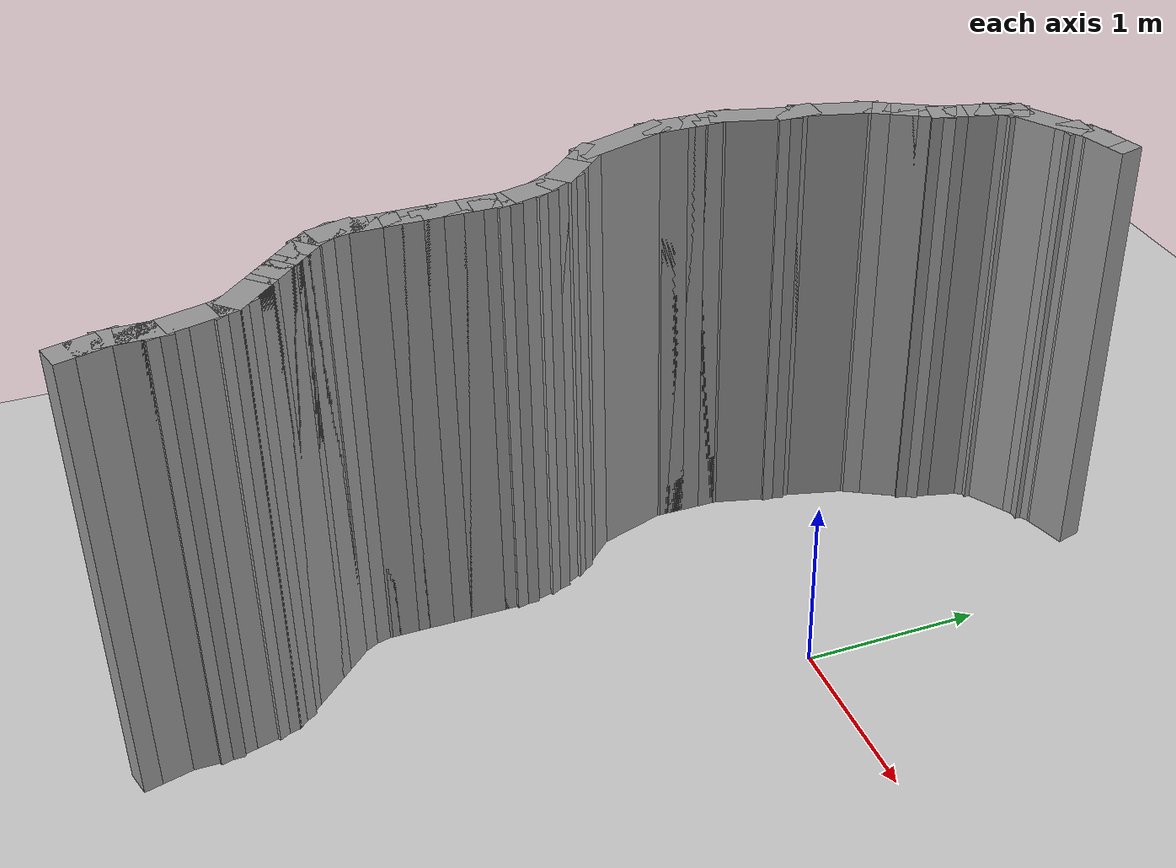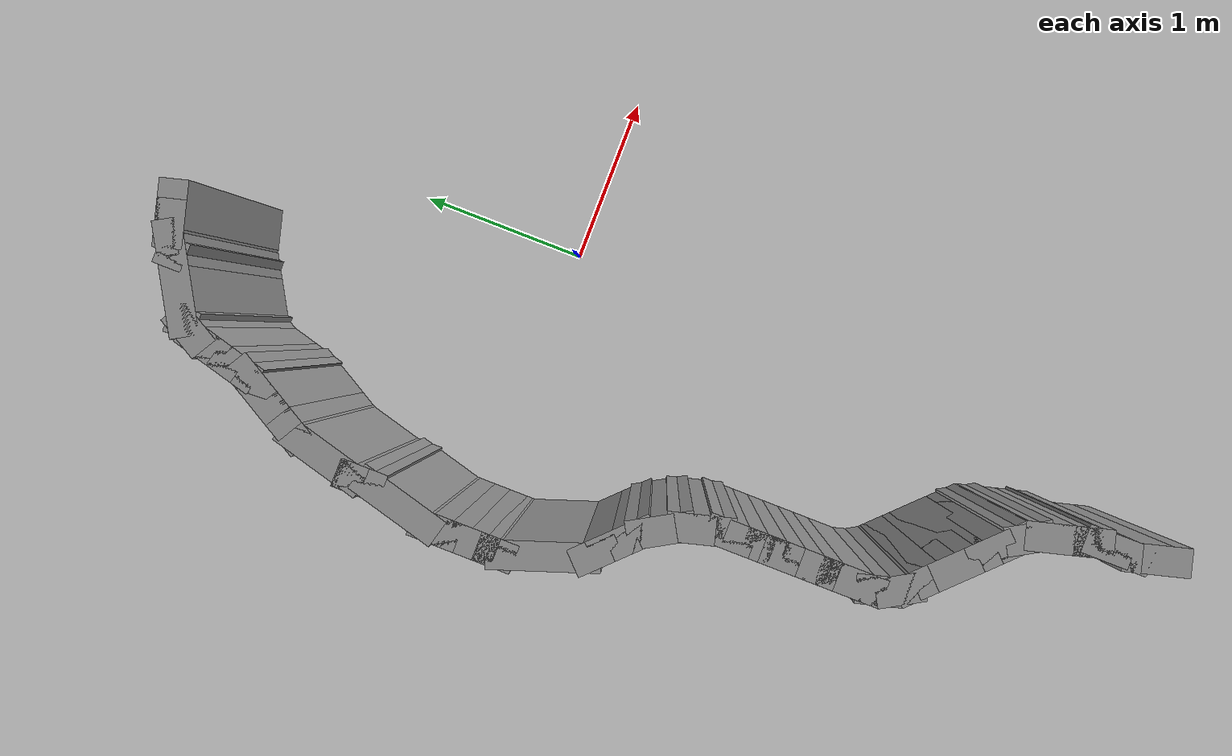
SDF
<sdf version="1.7">
 <world name="default">
  <model name="ground_plane">
   <static>1</static>
   <link name="link">
    <collision name="collision">
     <geometry><plane><normal>0 0 1</normal><size>100 100</size></plane></geometry>
     <surface>
      <contact><collide_bitmask>65535</collide_bitmask></contact>
      <friction><ode><mu>100</mu><mu2>50</mu2></ode></friction>
     </surface>
    </collision>
    <visual name="visual">
     <cast_shadows>0</cast_shadows>
     <geometry><plane><normal>0 0 1</normal><size>100 100</size></plane></geometry>
     <material>
      <script><uri>file://media/materials/scripts/gazebo.material</uri><name>Gazebo/Grey</name></script>
     </material>
    </visual>
   </link>
  </model>
  <model name="pool11">
   <pose>1.69068 -1.09805 0 0 -0 0</pose>
   <link name="Wall_167">
    <collision name="Wall_167_Collision">
     <geometry><box><size>0.25 0.15 2.5</size></box></geometry>
     <pose>0 0 1.25 0 -0 0</pose>
    </collision>
    <visual name="Wall_167_Visual">
     <pose>0 0 1.25 0 -0 0</pose>
     <geometry><box><size>0.25 0.15 2.5</size></box></geometry>
     <material>
      <script><uri>file://media/materials/scripts/gazebo.material</uri><name>Gazebo/Grey</name></script>
      <ambient>1 1 1 1</ambient>
     </material>
     <meta><layer>0</layer></meta>
    </visual>
    <pose>-2.228 2.96738 0 0 -0 -2.87979</pose>
   </link>
   <link name="Wall_168">
    <collision name="Wall_168_Collision">
     <geometry><box><size>0.25 0.15 2.5</size></box></geometry>
     <pose>0 0 1.25 0 -0 0</pose>
    </collision>
    <visual name="Wall_168_Visual">
     <pose>0 0 1.25 0 -0 0</pose>
     <geometry><box><size>0.25 0.15 2.5</size></box></geometry>
     <material>
      <script><uri>file://media/materials/scripts/gazebo.material</uri><name>Gazebo/Grey</name></script>
      <ambient>1 1 1 1</ambient>
     </material>
     <meta><layer>0</layer></meta>
    </visual>
    <pose>-2.3246 2.9415 0 0 -0 -2.87979</pose>
   </link>
   <link name="Wall_169">
    <collision name="Wall_169_Collision">
     <geometry><box><size>0.25 0.15 2.5</size></box></geometry>
     <pose>0 0 1.25 0 -0 0</pose>
    </collision>
    <visual name="Wall_169_Visual">
     <pose>0 0 1.25 0 -0 0</pose>
     <geometry><box><size>0.25 0.15 2.5</size></box></geometry>
     <material>
      <script><uri>file://media/materials/scripts/gazebo.material</uri><name>Gazebo/Grey</name></script>
      <ambient>1 1 1 1</ambient>
     </material>
     <meta><layer>0</layer></meta>
    </visual>
    <pose>-2.41619 2.90356 0 0 -0 -2.61799</pose>
   </link>
   <link name="Wall_170">
    <collision name="Wall_170_Collision">
     <geometry><box><size>0.15 0.15 2.5</size></box></geometry>
     <pose>0 0 1.25 0 -0 0</pose>
    </collision>
    <visual name="Wall_170_Visual">
     <pose>0 0 1.25 0 -0 0</pose>
     <geometry><box><size>0.15 0.15 2.5</size></box></geometry>
     <material>
      <script><uri>file://media/materials/scripts/gazebo.material</uri><name>Gazebo/Grey</name></script>
      <ambient>1 1 1 1</ambient>
     </material>
     <meta><layer>0</layer></meta>
    </visual>
    <pose>-2.45949 2.87856 0 0 -0 0</pose>
   </link>
   <link name="Wall_171">
    <collision name="Wall_171_Collision">
     <geometry><box><size>0.5 0.15 2.5</size></box></geometry>
     <pose>0 0 1.25 0 -0 0</pose>
    </collision>
    <visual name="Wall_171_Visual">
     <pose>0 0 1.25 0 -0 0</pose>
     <geometry><box><size>0.5 0.15 2.5</size></box></geometry>
     <material>
      <script><uri>file://media/materials/scripts/gazebo.material</uri><name>Gazebo/Grey</name></script>
      <ambient>1 1 1 1</ambient>
     </material>
     <meta><layer>0</layer></meta>
    </visual>
    <pose>-2.61105 2.79106 0 0 -0 -2.61799</pose>
   </link>
   <link name="Wall_172">
    <collision name="Wall_172_Collision">
     <geometry><box><size>0.15 0.15 2.5</size></box></geometry>
     <pose>0 0 1.25 0 -0 0</pose>
    </collision>
    <visual name="Wall_172_Visual">
     <pose>0 0 1.25 0 -0 0</pose>
     <geometry><box><size>0.15 0.15 2.5</size></box></geometry>
     <material>
      <script><uri>file://media/materials/scripts/gazebo.material</uri><name>Gazebo/Grey</name></script>
      <ambient>1 1 1 1</ambient>
     </material>
     <meta><layer>0</layer></meta>
    </visual>
    <pose>-2.7626 2.70356 0 0 -0 0</pose>
   </link>
   <link name="Wall_173">
    <collision name="Wall_173_Collision">
     <geometry><box><size>0.15 0.15 2.5</size></box></geometry>
     <pose>0 0 1.25 0 -0 0</pose>
    </collision>
    <visual name="Wall_173_Visual">
     <pose>0 0 1.25 0 -0 0</pose>
     <geometry><box><size>0.15 0.15 2.5</size></box></geometry>
     <material>
      <script><uri>file://media/materials/scripts/gazebo.material</uri><name>Gazebo/Grey</name></script>
      <ambient>1 1 1 1</ambient>
     </material>
     <meta><layer>0</layer></meta>
    </visual>
    <pose>-2.7626 2.70356 0 0 -0 0</pose>
   </link>
   <link name="Wall_174">
    <collision name="Wall_174_Collision">
     <geometry><box><size>0.25 0.15 2.5</size></box></geometry>
     <pose>0 0 1.25 0 -0 0</pose>
    </collision>
    <visual name="Wall_174_Visual">
     <pose>0 0 1.25 0 -0 0</pose>
     <geometry><box><size>0.25 0.15 2.5</size></box></geometry>
     <material>
      <script><uri>file://media/materials/scripts/gazebo.material</uri><name>Gazebo/Grey</name></script>
      <ambient>1 1 1 1</ambient>
     </material>
     <meta><layer>0</layer></meta>
    </visual>
    <pose>-2.7876 2.66026 0 0 -0 -2.0944</pose>
   </link>
   <link name="Wall_175">
    <collision name="Wall_175_Collision">
     <geometry><box><size>0.25 0.15 2.5</size></box></geometry>
     <pose>0 0 1.25 0 -0 0</pose>
    </collision>
    <visual name="Wall_175_Visual">
     <pose>0 0 1.25 0 -0 0</pose>
     <geometry><box><size>0.25 0.15 2.5</size></box></geometry>
     <material>
      <script><uri>file://media/materials/scripts/gazebo.material</uri><name>Gazebo/Grey</name></script>
      <ambient>1 1 1 1</ambient>
     </material>
     <meta><layer>0</layer></meta>
    </visual>
    <pose>-2.82554 2.56866 0 0 -0 -1.8326</pose>
   </link>
   <link name="Wall_176">
    <collision name="Wall_176_Collision">
     <geometry><box><size>0.25 0.15 2.5</size></box></geometry>
     <pose>0 0 1.25 0 -0 0</pose>
    </collision>
    <visual name="Wall_176_Visual">
     <pose>0 0 1.25 0 -0 0</pose>
     <geometry><box><size>0.25 0.15 2.5</size></box></geometry>
     <material>
      <script><uri>file://media/materials/scripts/gazebo.material</uri><name>Gazebo/Grey</name></script>
      <ambient>1 1 1 1</ambient>
     </material>
     <meta><layer>0</layer></meta>
    </visual>
    <pose>-2.85143 2.47207 0 0 -0 -1.8326</pose>
   </link>
   <link name="Wall_177">
    <collision name="Wall_177_Collision">
     <geometry><box><size>0.25 0.15 2.5</size></box></geometry>
     <pose>0 0 1.25 0 -0 0</pose>
    </collision>
    <visual name="Wall_177_Visual">
     <pose>0 0 1.25 0 -0 0</pose>
     <geometry><box><size>0.25 0.15 2.5</size></box></geometry>
     <material>
      <script><uri>file://media/materials/scripts/gazebo.material</uri><name>Gazebo/Grey</name></script>
      <ambient>1 1 1 1</ambient>
     </material>
     <meta><layer>0</layer></meta>
    </visual>
    <pose>-2.87731 2.37547 0 0 -0 -1.8326</pose>
   </link>
   <link name="Wall_178">
    <collision name="Wall_178_Collision">
     <geometry><box><size>0.25 0.15 2.5</size></box></geometry>
     <pose>0 0 1.25 0 -0 0</pose>
    </collision>
    <visual name="Wall_178_Visual">
     <pose>0 0 1.25 0 -0 0</pose>
     <geometry><box><size>0.25 0.15 2.5</size></box></geometry>
     <material>
      <script><uri>file://media/materials/scripts/gazebo.material</uri><name>Gazebo/Grey</name></script>
      <ambient>1 1 1 1</ambient>
     </material>
     <meta><layer>0</layer></meta>
    </visual>
    <pose>-2.91525 2.28388 0 0 -0 -2.0944</pose>
   </link>
   <link name="Wall_179">
    <collision name="Wall_179_Collision">
     <geometry><box><size>0.25 0.15 2.5</size></box></geometry>
     <pose>0 0 1.25 0 -0 0</pose>
    </collision>
    <visual name="Wall_179_Visual">
     <pose>0 0 1.25 0 -0 0</pose>
     <geometry><box><size>0.25 0.15 2.5</size></box></geometry>
     <material>
      <script><uri>file://media/materials/scripts/gazebo.material</uri><name>Gazebo/Grey</name></script>
      <ambient>1 1 1 1</ambient>
     </material>
     <meta><layer>0</layer></meta>
    </visual>
    <pose>-2.96525 2.19727 0 0 -0 -2.0944</pose>
   </link>
   <link name="Wall_180">
    <collision name="Wall_180_Collision">
     <geometry><box><size>0.25 0.15 2.5</size></box></geometry>
     <pose>0 0 1.25 0 -0 0</pose>
    </collision>
    <visual name="Wall_180_Visual">
     <pose>0 0 1.25 0 -0 0</pose>
     <geometry><box><size>0.25 0.15 2.5</size></box></geometry>
     <material>
      <script><uri>file://media/materials/scripts/gazebo.material</uri><name>Gazebo/Grey</name></script>
      <ambient>1 1 1 1</ambient>
     </material>
     <meta><layer>0</layer></meta>
    </visual>
    <pose>-3.01525 2.11067 0 0 -0 -2.0944</pose>
   </link>
   <link name="Wall_181">
    <collision name="Wall_181_Collision">
     <geometry><box><size>0.25 0.15 2.5</size></box></geometry>
     <pose>0 0 1.25 0 -0 0</pose>
    </collision>
    <visual name="Wall_181_Visual">
     <pose>0 0 1.25 0 -0 0</pose>
     <geometry><box><size>0.25 0.15 2.5</size></box></geometry>
     <material>
      <script><uri>file://media/materials/scripts/gazebo.material</uri><name>Gazebo/Grey</name></script>
      <ambient>1 1 1 1</ambient>
     </material>
     <meta><layer>0</layer></meta>
    </visual>
    <pose>-3.06525 2.02407 0 0 -0 -2.0944</pose>
   </link>
   <link name="Wall_182">
    <collision name="Wall_182_Collision">
     <geometry><box><size>0.5 0.15 2.5</size></box></geometry>
     <pose>0 0 1.25 0 -0 0</pose>
    </collision>
    <visual name="Wall_182_Visual">
     <pose>0 0 1.25 0 -0 0</pose>
     <geometry><box><size>0.5 0.15 2.5</size></box></geometry>
     <material>
      <script><uri>file://media/materials/scripts/gazebo.material</uri><name>Gazebo/Grey</name></script>
      <ambient>1 1 1 1</ambient>
     </material>
     <meta><layer>0</layer></meta>
    </visual>
    <pose>-3.13554 1.81173 0 0 -0 -1.8326</pose>
   </link>
   <link name="Wall_183">
    <collision name="Wall_183_Collision">
     <geometry><box><size>0.15 0.15 2.5</size></box></geometry>
     <pose>0 0 1.25 0 -0 0</pose>
    </collision>
    <visual name="Wall_183_Visual">
     <pose>0 0 1.25 0 -0 0</pose>
     <geometry><box><size>0.15 0.15 2.5</size></box></geometry>
     <material>
      <script><uri>file://media/materials/scripts/gazebo.material</uri><name>Gazebo/Grey</name></script>
      <ambient>1 1 1 1</ambient>
     </material>
     <meta><layer>0</layer></meta>
    </visual>
    <pose>-3.18084 1.64269 0 0 -0 0</pose>
   </link>
   <link name="Wall_184">
    <collision name="Wall_184_Collision">
     <geometry><box><size>0.25 0.15 2.5</size></box></geometry>
     <pose>0 0 1.25 0 -0 0</pose>
    </collision>
    <visual name="Wall_184_Visual">
     <pose>0 0 1.25 0 -0 0</pose>
     <geometry><box><size>0.25 0.15 2.5</size></box></geometry>
     <material>
      <script><uri>file://media/materials/scripts/gazebo.material</uri><name>Gazebo/Grey</name></script>
      <ambient>1 1 1 1</ambient>
     </material>
     <meta><layer>0</layer></meta>
    </visual>
    <pose>-3.18084 1.59269 0 0 -0 -1.5708</pose>
   </link>
   <link name="Wall_185">
    <collision name="Wall_185_Collision">
     <geometry><box><size>0.5 0.15 2.5</size></box></geometry>
     <pose>0 0 1.25 0 -0 0</pose>
    </collision>
    <visual name="Wall_185_Visual">
     <pose>0 0 1.25 0 -0 0</pose>
     <geometry><box><size>0.5 0.15 2.5</size></box></geometry>
     <material>
      <script><uri>file://media/materials/scripts/gazebo.material</uri><name>Gazebo/Grey</name></script>
      <ambient>1 1 1 1</ambient>
     </material>
     <meta><layer>0</layer></meta>
    </visual>
    <pose>-3.22613 1.37366 0 0 -0 -1.8326</pose>
   </link>
   <link name="Wall_186">
    <collision name="Wall_186_Collision">
     <geometry><box><size>0.25 0.15 2.5</size></box></geometry>
     <pose>0 0 1.25 0 -0 0</pose>
    </collision>
    <visual name="Wall_186_Visual">
     <pose>0 0 1.25 0 -0 0</pose>
     <geometry><box><size>0.25 0.15 2.5</size></box></geometry>
     <material>
      <script><uri>file://media/materials/scripts/gazebo.material</uri><name>Gazebo/Grey</name></script>
      <ambient>1 1 1 1</ambient>
     </material>
     <meta><layer>0</layer></meta>
    </visual>
    <pose>-3.27142 1.15462 0 0 -0 -1.5708</pose>
   </link>
   <link name="Wall_187">
    <collision name="Wall_187_Collision">
     <geometry><box><size>0.25 0.15 2.5</size></box></geometry>
     <pose>0 0 1.25 0 -0 0</pose>
    </collision>
    <visual name="Wall_187_Visual">
     <pose>0 0 1.25 0 -0 0</pose>
     <geometry><box><size>0.25 0.15 2.5</size></box></geometry>
     <material>
      <script><uri>file://media/materials/scripts/gazebo.material</uri><name>Gazebo/Grey</name></script>
      <ambient>1 1 1 1</ambient>
     </material>
     <meta><layer>0</layer></meta>
    </visual>
    <pose>-3.27142 1.05462 0 0 -0 -1.5708</pose>
   </link>
   <link name="Wall_188">
    <collision name="Wall_188_Collision">
     <geometry><box><size>0.25 0.15 2.5</size></box></geometry>
     <pose>0 0 1.25 0 -0 0</pose>
    </collision>
    <visual name="Wall_188_Visual">
     <pose>0 0 1.25 0 -0 0</pose>
     <geometry><box><size>0.25 0.15 2.5</size></box></geometry>
     <material>
      <script><uri>file://media/materials/scripts/gazebo.material</uri><name>Gazebo/Grey</name></script>
      <ambient>1 1 1 1</ambient>
     </material>
     <meta><layer>0</layer></meta>
    </visual>
    <pose>-3.27142 0.95462 0 0 -0 -1.5708</pose>
   </link>
   <link name="Wall_189">
    <collision name="Wall_189_Collision">
     <geometry><box><size>0.25 0.15 2.5</size></box></geometry>
     <pose>0 0 1.25 0 -0 0</pose>
    </collision>
    <visual name="Wall_189_Visual">
     <pose>0 0 1.25 0 -0 0</pose>
     <geometry><box><size>0.25 0.15 2.5</size></box></geometry>
     <material>
      <script><uri>file://media/materials/scripts/gazebo.material</uri><name>Gazebo/Grey</name></script>
      <ambient>1 1 1 1</ambient>
     </material>
     <meta><layer>0</layer></meta>
    </visual>
    <pose>-3.27142 0.95462 0 0 -0 1.5708</pose>
   </link>
   <link name="Wall_190">
    <collision name="Wall_190_Collision">
     <geometry><box><size>0.25 0.15 2.5</size></box></geometry>
     <pose>0 0 1.25 0 -0 0</pose>
    </collision>
    <visual name="Wall_190_Visual">
     <pose>0 0 1.25 0 -0 0</pose>
     <geometry><box><size>0.25 0.15 2.5</size></box></geometry>
     <material>
      <script><uri>file://media/materials/scripts/gazebo.material</uri><name>Gazebo/Grey</name></script>
      <ambient>1 1 1 1</ambient>
     </material>
     <meta><layer>0</layer></meta>
    </visual>
    <pose>-3.27142 0.95462 0 0 -0 -1.5708</pose>
   </link>
   <link name="Wall_191">
    <collision name="Wall_191_Collision">
     <geometry><box><size>0.25 0.15 2.5</size></box></geometry>
     <pose>0 0 1.25 0 -0 0</pose>
    </collision>
    <visual name="Wall_191_Visual">
     <pose>0 0 1.25 0 -0 0</pose>
     <geometry><box><size>0.25 0.15 2.5</size></box></geometry>
     <material>
      <script><uri>file://media/materials/scripts/gazebo.material</uri><name>Gazebo/Grey</name></script>
      <ambient>1 1 1 1</ambient>
     </material>
     <meta><layer>0</layer></meta>
    </visual>
    <pose>-3.27142 0.85462 0 0 -0 -1.5708</pose>
   </link>
   <link name="Wall_192">
    <collision name="Wall_192_Collision">
     <geometry><box><size>0.578699 0.15 2.5</size></box></geometry>
     <pose>0 0 1.25 0 -0 0</pose>
    </collision>
    <visual name="Wall_192_Visual">
     <pose>0 0 1.25 0 -0 0</pose>
     <geometry><box><size>0.578699 0.15 2.5</size></box></geometry>
     <material>
      <script><uri>file://media/materials/scripts/gazebo.material</uri><name>Gazebo/Grey</name></script>
      <ambient>1 1 1 1</ambient>
     </material>
     <meta><layer>0</layer></meta>
    </visual>
    <pose>-3.20151 0.601993 0 0 -0 -1.23854</pose>
   </link>
   <link name="Wall_22">
    <collision name="Wall_22_Collision">
     <geometry><box><size>0.25 0.15 2.5</size></box></geometry>
     <pose>0 0 1.25 0 -0 0</pose>
    </collision>
    <visual name="Wall_22_Visual">
     <pose>0 0 1.25 0 -0 0</pose>
     <geometry><box><size>0.25 0.15 2.5</size></box></geometry>
     <material>
      <script><uri>file://media/materials/scripts/gazebo.material</uri><name>Gazebo/Grey</name></script>
      <ambient>1 1 1 1</ambient>
     </material>
     <meta><layer>0</layer></meta>
    </visual>
    <pose>-3.09624 0.364011 0 0 -0 -0.785398</pose>
   </link>
   <link name="Wall_23">
    <collision name="Wall_23_Collision">
     <geometry><box><size>0.25 0.15 2.5</size></box></geometry>
     <pose>0 0 1.25 0 -0 0</pose>
    </collision>
    <visual name="Wall_23_Visual">
     <pose>0 0 1.25 0 -0 0</pose>
     <geometry><box><size>0.25 0.15 2.5</size></box></geometry>
     <material>
      <script><uri>file://media/materials/scripts/gazebo.material</uri><name>Gazebo/Grey</name></script>
      <ambient>1 1 1 1</ambient>
     </material>
     <meta><layer>0</layer></meta>
    </visual>
    <pose>-3.02553 0.2933 0 0 -0 -0.785398</pose>
   </link>
   <link name="Wall_24">
    <collision name="Wall_24_Collision">
     <geometry><box><size>0.25 0.15 2.5</size></box></geometry>
     <pose>0 0 1.25 0 -0 0</pose>
    </collision>
    <visual name="Wall_24_Visual">
     <pose>0 0 1.25 0 -0 0</pose>
     <geometry><box><size>0.25 0.15 2.5</size></box></geometry>
     <material>
      <script><uri>file://media/materials/scripts/gazebo.material</uri><name>Gazebo/Grey</name></script>
      <ambient>1 1 1 1</ambient>
     </material>
     <meta><layer>0</layer></meta>
    </visual>
    <pose>-2.95482 0.222589 0 0 -0 -0.785398</pose>
   </link>
   <link name="Wall_25">
    <collision name="Wall_25_Collision">
     <geometry><box><size>0.25 0.15 2.5</size></box></geometry>
     <pose>0 0 1.25 0 -0 0</pose>
    </collision>
    <visual name="Wall_25_Visual">
     <pose>0 0 1.25 0 -0 0</pose>
     <geometry><box><size>0.25 0.15 2.5</size></box></geometry>
     <material>
      <script><uri>file://media/materials/scripts/gazebo.material</uri><name>Gazebo/Grey</name></script>
      <ambient>1 1 1 1</ambient>
     </material>
     <meta><layer>0</layer></meta>
    </visual>
    <pose>-2.89446 0.143933 0 0 -0 -1.0472</pose>
   </link>
   <link name="Wall_26">
    <collision name="Wall_26_Collision">
     <geometry><box><size>0.25 0.15 2.5</size></box></geometry>
     <pose>0 0 1.25 0 -0 0</pose>
    </collision>
    <visual name="Wall_26_Visual">
     <pose>0 0 1.25 0 -0 0</pose>
     <geometry><box><size>0.25 0.15 2.5</size></box></geometry>
     <material>
      <script><uri>file://media/materials/scripts/gazebo.material</uri><name>Gazebo/Grey</name></script>
      <ambient>1 1 1 1</ambient>
     </material>
     <meta><layer>0</layer></meta>
    </visual>
    <pose>-2.84446 0.05733 0 0 -0 -1.0472</pose>
   </link>
   <link name="Wall_27">
    <collision name="Wall_27_Collision">
     <geometry><box><size>0.25 0.15 2.5</size></box></geometry>
     <pose>0 0 1.25 0 -0 0</pose>
    </collision>
    <visual name="Wall_27_Visual">
     <pose>0 0 1.25 0 -0 0</pose>
     <geometry><box><size>0.25 0.15 2.5</size></box></geometry>
     <material>
      <script><uri>file://media/materials/scripts/gazebo.material</uri><name>Gazebo/Grey</name></script>
      <ambient>1 1 1 1</ambient>
     </material>
     <meta><layer>0</layer></meta>
    </visual>
    <pose>-2.80652 -0.034267 0 0 -0 -1.309</pose>
   </link>
   <link name="Wall_28">
    <collision name="Wall_28_Collision">
     <geometry><box><size>0.25 0.15 2.5</size></box></geometry>
     <pose>0 0 1.25 0 -0 0</pose>
    </collision>
    <visual name="Wall_28_Visual">
     <pose>0 0 1.25 0 -0 0</pose>
     <geometry><box><size>0.25 0.15 2.5</size></box></geometry>
     <material>
      <script><uri>file://media/materials/scripts/gazebo.material</uri><name>Gazebo/Grey</name></script>
      <ambient>1 1 1 1</ambient>
     </material>
     <meta><layer>0</layer></meta>
    </visual>
    <pose>-2.78064 -0.13086 0 0 -0 -1.309</pose>
   </link>
   <link name="Wall_29">
    <collision name="Wall_29_Collision">
     <geometry><box><size>0.25 0.15 2.5</size></box></geometry>
     <pose>0 0 1.25 0 -0 0</pose>
    </collision>
    <visual name="Wall_29_Visual">
     <pose>0 0 1.25 0 -0 0</pose>
     <geometry><box><size>0.25 0.15 2.5</size></box></geometry>
     <material>
      <script><uri>file://media/materials/scripts/gazebo.material</uri><name>Gazebo/Grey</name></script>
      <ambient>1 1 1 1</ambient>
     </material>
     <meta><layer>0</layer></meta>
    </visual>
    <pose>-2.7677 -0.229156 0 0 -0 -1.5708</pose>
   </link>
   <link name="Wall_30">
    <collision name="Wall_30_Collision">
     <geometry><box><size>0.25 0.15 2.5</size></box></geometry>
     <pose>0 0 1.25 0 -0 0</pose>
    </collision>
    <visual name="Wall_30_Visual">
     <pose>0 0 1.25 0 -0 0</pose>
     <geometry><box><size>0.25 0.15 2.5</size></box></geometry>
     <material>
      <script><uri>file://media/materials/scripts/gazebo.material</uri><name>Gazebo/Grey</name></script>
      <ambient>1 1 1 1</ambient>
     </material>
     <meta><layer>0</layer></meta>
    </visual>
    <pose>-2.7677 -0.329156 0 0 -0 -1.5708</pose>
   </link>
   <link name="Wall_31">
    <collision name="Wall_31_Collision">
     <geometry><box><size>0.25 0.15 2.5</size></box></geometry>
     <pose>0 0 1.25 0 -0 0</pose>
    </collision>
    <visual name="Wall_31_Visual">
     <pose>0 0 1.25 0 -0 0</pose>
     <geometry><box><size>0.25 0.15 2.5</size></box></geometry>
     <material>
      <script><uri>file://media/materials/scripts/gazebo.material</uri><name>Gazebo/Grey</name></script>
      <ambient>1 1 1 1</ambient>
     </material>
     <meta><layer>0</layer></meta>
    </visual>
    <pose>-2.7677 -0.429156 0 0 -0 -1.5708</pose>
   </link>
   <link name="Wall_32">
    <collision name="Wall_32_Collision">
     <geometry><box><size>0.25 0.15 2.5</size></box></geometry>
     <pose>0 0 1.25 0 -0 0</pose>
    </collision>
    <visual name="Wall_32_Visual">
     <pose>0 0 1.25 0 -0 0</pose>
     <geometry><box><size>0.25 0.15 2.5</size></box></geometry>
     <material>
      <script><uri>file://media/materials/scripts/gazebo.material</uri><name>Gazebo/Grey</name></script>
      <ambient>1 1 1 1</ambient>
     </material>
     <meta><layer>0</layer></meta>
    </visual>
    <pose>-2.7677 -0.529156 0 0 -0 -1.5708</pose>
   </link>
   <link name="Wall_33">
    <collision name="Wall_33_Collision">
     <geometry><box><size>0.25 0.15 2.5</size></box></geometry>
     <pose>0 0 1.25 0 -0 0</pose>
    </collision>
    <visual name="Wall_33_Visual">
     <pose>0 0 1.25 0 -0 0</pose>
     <geometry><box><size>0.25 0.15 2.5</size></box></geometry>
     <material>
      <script><uri>file://media/materials/scripts/gazebo.material</uri><name>Gazebo/Grey</name></script>
      <ambient>1 1 1 1</ambient>
     </material>
     <meta><layer>0</layer></meta>
    </visual>
    <pose>-2.7677 -0.629156 0 0 -0 -1.5708</pose>
   </link>
   <link name="Wall_34">
    <collision name="Wall_34_Collision">
     <geometry><box><size>0.25 0.15 2.5</size></box></geometry>
     <pose>0 0 1.25 0 -0 0</pose>
    </collision>
    <visual name="Wall_34_Visual">
     <pose>0 0 1.25 0 -0 0</pose>
     <geometry><box><size>0.25 0.15 2.5</size></box></geometry>
     <material>
      <script><uri>file://media/materials/scripts/gazebo.material</uri><name>Gazebo/Grey</name></script>
      <ambient>1 1 1 1</ambient>
     </material>
     <meta><layer>0</layer></meta>
    </visual>
    <pose>-2.7677 -0.729156 0 0 -0 -1.5708</pose>
   </link>
   <link name="Wall_35">
    <collision name="Wall_35_Collision">
     <geometry><box><size>0.25 0.15 2.5</size></box></geometry>
     <pose>0 0 1.25 0 -0 0</pose>
    </collision>
    <visual name="Wall_35_Visual">
     <pose>0 0 1.25 0 -0 0</pose>
     <geometry><box><size>0.25 0.15 2.5</size></box></geometry>
     <material>
      <script><uri>file://media/materials/scripts/gazebo.material</uri><name>Gazebo/Grey</name></script>
      <ambient>1 1 1 1</ambient>
     </material>
     <meta><layer>0</layer></meta>
    </visual>
    <pose>-2.7677 -0.829156 0 0 -0 -1.5708</pose>
   </link>
   <link name="Wall_36">
    <collision name="Wall_36_Collision">
     <geometry><box><size>0.25 0.15 2.5</size></box></geometry>
     <pose>0 0 1.25 0 -0 0</pose>
    </collision>
    <visual name="Wall_36_Visual">
     <pose>0 0 1.25 0 -0 0</pose>
     <geometry><box><size>0.25 0.15 2.5</size></box></geometry>
     <material>
      <script><uri>file://media/materials/scripts/gazebo.material</uri><name>Gazebo/Grey</name></script>
      <ambient>1 1 1 1</ambient>
     </material>
     <meta><layer>0</layer></meta>
    </visual>
    <pose>-2.7677 -0.929156 0 0 -0 -1.5708</pose>
   </link>
   <link name="Wall_37">
    <collision name="Wall_37_Collision">
     <geometry><box><size>0.25 0.15 2.5</size></box></geometry>
     <pose>0 0 1.25 0 -0 0</pose>
    </collision>
    <visual name="Wall_37_Visual">
     <pose>0 0 1.25 0 -0 0</pose>
     <geometry><box><size>0.25 0.15 2.5</size></box></geometry>
     <material>
      <script><uri>file://media/materials/scripts/gazebo.material</uri><name>Gazebo/Grey</name></script>
      <ambient>1 1 1 1</ambient>
     </material>
     <meta><layer>0</layer></meta>
    </visual>
    <pose>-2.75475 -1.02745 0 0 -0 -1.309</pose>
   </link>
   <link name="Wall_38">
    <collision name="Wall_38_Collision">
     <geometry><box><size>0.25 0.15 2.5</size></box></geometry>
     <pose>0 0 1.25 0 -0 0</pose>
    </collision>
    <visual name="Wall_38_Visual">
     <pose>0 0 1.25 0 -0 0</pose>
     <geometry><box><size>0.25 0.15 2.5</size></box></geometry>
     <material>
      <script><uri>file://media/materials/scripts/gazebo.material</uri><name>Gazebo/Grey</name></script>
      <ambient>1 1 1 1</ambient>
     </material>
     <meta><layer>0</layer></meta>
    </visual>
    <pose>-2.71681 -1.11905 0 0 -0 -1.0472</pose>
   </link>
   <link name="Wall_39">
    <collision name="Wall_39_Collision">
     <geometry><box><size>0.25 0.15 2.5</size></box></geometry>
     <pose>0 0 1.25 0 -0 0</pose>
    </collision>
    <visual name="Wall_39_Visual">
     <pose>0 0 1.25 0 -0 0</pose>
     <geometry><box><size>0.25 0.15 2.5</size></box></geometry>
     <material>
      <script><uri>file://media/materials/scripts/gazebo.material</uri><name>Gazebo/Grey</name></script>
      <ambient>1 1 1 1</ambient>
     </material>
     <meta><layer>0</layer></meta>
    </visual>
    <pose>-2.65646 -1.19771 0 0 -0 -0.785398</pose>
   </link>
   <link name="Wall_40">
    <collision name="Wall_40_Collision">
     <geometry><box><size>0.25 0.15 2.5</size></box></geometry>
     <pose>0 0 1.25 0 -0 0</pose>
    </collision>
    <visual name="Wall_40_Visual">
     <pose>0 0 1.25 0 -0 0</pose>
     <geometry><box><size>0.25 0.15 2.5</size></box></geometry>
     <material>
      <script><uri>file://media/materials/scripts/gazebo.material</uri><name>Gazebo/Grey</name></script>
      <ambient>1 1 1 1</ambient>
     </material>
     <meta><layer>0</layer></meta>
    </visual>
    <pose>-2.58575 -1.26842 0 0 -0 -0.785398</pose>
   </link>
   <link name="Wall_41">
    <collision name="Wall_41_Collision">
     <geometry><box><size>0.25 0.15 2.5</size></box></geometry>
     <pose>0 0 1.25 0 -0 0</pose>
    </collision>
    <visual name="Wall_41_Visual">
     <pose>0 0 1.25 0 -0 0</pose>
     <geometry><box><size>0.25 0.15 2.5</size></box></geometry>
     <material>
      <script><uri>file://media/materials/scripts/gazebo.material</uri><name>Gazebo/Grey</name></script>
      <ambient>1 1 1 1</ambient>
     </material>
     <meta><layer>0</layer></meta>
    </visual>
    <pose>-2.51504 -1.33913 0 0 -0 -0.785398</pose>
   </link>
   <link name="Wall_42">
    <collision name="Wall_42_Collision">
     <geometry><box><size>0.25 0.15 2.5</size></box></geometry>
     <pose>0 0 1.25 0 -0 0</pose>
    </collision>
    <visual name="Wall_42_Visual">
     <pose>0 0 1.25 0 -0 0</pose>
     <geometry><box><size>0.25 0.15 2.5</size></box></geometry>
     <material>
      <script><uri>file://media/materials/scripts/gazebo.material</uri><name>Gazebo/Grey</name></script>
      <ambient>1 1 1 1</ambient>
     </material>
     <meta><layer>0</layer></meta>
    </visual>
    <pose>-2.44433 -1.40984 0 0 -0 -0.785398</pose>
   </link>
   <link name="Wall_43">
    <collision name="Wall_43_Collision">
     <geometry><box><size>0.25 0.15 2.5</size></box></geometry>
     <pose>0 0 1.25 0 -0 0</pose>
    </collision>
    <visual name="Wall_43_Visual">
     <pose>0 0 1.25 0 -0 0</pose>
     <geometry><box><size>0.25 0.15 2.5</size></box></geometry>
     <material>
      <script><uri>file://media/materials/scripts/gazebo.material</uri><name>Gazebo/Grey</name></script>
      <ambient>1 1 1 1</ambient>
     </material>
     <meta><layer>0</layer></meta>
    </visual>
    <pose>-2.37362 -1.48055 0 0 -0 -0.785398</pose>
   </link>
   <link name="Wall_44">
    <collision name="Wall_44_Collision">
     <geometry><box><size>0.25 0.15 2.5</size></box></geometry>
     <pose>0 0 1.25 0 -0 0</pose>
    </collision>
    <visual name="Wall_44_Visual">
     <pose>0 0 1.25 0 -0 0</pose>
     <geometry><box><size>0.25 0.15 2.5</size></box></geometry>
     <material>
      <script><uri>file://media/materials/scripts/gazebo.material</uri><name>Gazebo/Grey</name></script>
      <ambient>1 1 1 1</ambient>
     </material>
     <meta><layer>0</layer></meta>
    </visual>
    <pose>-2.30291 -1.55126 0 0 -0 -0.785398</pose>
   </link>
   <link name="Wall_45">
    <collision name="Wall_45_Collision">
     <geometry><box><size>0.25 0.15 2.5</size></box></geometry>
     <pose>0 0 1.25 0 -0 0</pose>
    </collision>
    <visual name="Wall_45_Visual">
     <pose>0 0 1.25 0 -0 0</pose>
     <geometry><box><size>0.25 0.15 2.5</size></box></geometry>
     <material>
      <script><uri>file://media/materials/scripts/gazebo.material</uri><name>Gazebo/Grey</name></script>
      <ambient>1 1 1 1</ambient>
     </material>
     <meta><layer>0</layer></meta>
    </visual>
    <pose>-2.24255 -1.62992 0 0 -0 -1.0472</pose>
   </link>
   <link name="Wall_46">
    <collision name="Wall_46_Collision">
     <geometry><box><size>0.25 0.15 2.5</size></box></geometry>
     <pose>0 0 1.25 0 -0 0</pose>
    </collision>
    <visual name="Wall_46_Visual">
     <pose>0 0 1.25 0 -0 0</pose>
     <geometry><box><size>0.25 0.15 2.5</size></box></geometry>
     <material>
      <script><uri>file://media/materials/scripts/gazebo.material</uri><name>Gazebo/Grey</name></script>
      <ambient>1 1 1 1</ambient>
     </material>
     <meta><layer>0</layer></meta>
    </visual>
    <pose>-2.20461 -1.72151 0 0 -0 -1.309</pose>
   </link>
   <link name="Wall_47">
    <collision name="Wall_47_Collision">
     <geometry><box><size>0.25 0.15 2.5</size></box></geometry>
     <pose>0 0 1.25 0 -0 0</pose>
    </collision>
    <visual name="Wall_47_Visual">
     <pose>0 0 1.25 0 -0 0</pose>
     <geometry><box><size>0.25 0.15 2.5</size></box></geometry>
     <material>
      <script><uri>file://media/materials/scripts/gazebo.material</uri><name>Gazebo/Grey</name></script>
      <ambient>1 1 1 1</ambient>
     </material>
     <meta><layer>0</layer></meta>
    </visual>
    <pose>-2.17873 -1.81811 0 0 -0 -1.309</pose>
   </link>
   <link name="Wall_48">
    <collision name="Wall_48_Collision">
     <geometry><box><size>0.25 0.15 2.5</size></box></geometry>
     <pose>0 0 1.25 0 -0 0</pose>
    </collision>
    <visual name="Wall_48_Visual">
     <pose>0 0 1.25 0 -0 0</pose>
     <geometry><box><size>0.25 0.15 2.5</size></box></geometry>
     <material>
      <script><uri>file://media/materials/scripts/gazebo.material</uri><name>Gazebo/Grey</name></script>
      <ambient>1 1 1 1</ambient>
     </material>
     <meta><layer>0</layer></meta>
    </visual>
    <pose>-2.15285 -1.9147 0 0 -0 -1.309</pose>
   </link>
   <link name="Wall_49">
    <collision name="Wall_49_Collision">
     <geometry><box><size>0.25 0.15 2.5</size></box></geometry>
     <pose>0 0 1.25 0 -0 0</pose>
    </collision>
    <visual name="Wall_49_Visual">
     <pose>0 0 1.25 0 -0 0</pose>
     <geometry><box><size>0.25 0.15 2.5</size></box></geometry>
     <material>
      <script><uri>file://media/materials/scripts/gazebo.material</uri><name>Gazebo/Grey</name></script>
      <ambient>1 1 1 1</ambient>
     </material>
     <meta><layer>0</layer></meta>
    </visual>
    <pose>-2.13991 -2.013 0 0 -0 -1.5708</pose>
   </link>
   <link name="Wall_50">
    <collision name="Wall_50_Collision">
     <geometry><box><size>0.25 0.15 2.5</size></box></geometry>
     <pose>0 0 1.25 0 -0 0</pose>
    </collision>
    <visual name="Wall_50_Visual">
     <pose>0 0 1.25 0 -0 0</pose>
     <geometry><box><size>0.25 0.15 2.5</size></box></geometry>
     <material>
      <script><uri>file://media/materials/scripts/gazebo.material</uri><name>Gazebo/Grey</name></script>
      <ambient>1 1 1 1</ambient>
     </material>
     <meta><layer>0</layer></meta>
    </visual>
    <pose>-2.13991 -2.113 0 0 -0 -1.5708</pose>
   </link>
   <link name="Wall_51">
    <collision name="Wall_51_Collision">
     <geometry><box><size>0.25 0.15 2.5</size></box></geometry>
     <pose>0 0 1.25 0 -0 0</pose>
    </collision>
    <visual name="Wall_51_Visual">
     <pose>0 0 1.25 0 -0 0</pose>
     <geometry><box><size>0.25 0.15 2.5</size></box></geometry>
     <material>
      <script><uri>file://media/materials/scripts/gazebo.material</uri><name>Gazebo/Grey</name></script>
      <ambient>1 1 1 1</ambient>
     </material>
     <meta><layer>0</layer></meta>
    </visual>
    <pose>-2.12696 -2.21129 0 0 -0 -1.309</pose>
   </link>
   <link name="Wall_52">
    <collision name="Wall_52_Collision">
     <geometry><box><size>0.25 0.15 2.5</size></box></geometry>
     <pose>0 0 1.25 0 -0 0</pose>
    </collision>
    <visual name="Wall_52_Visual">
     <pose>0 0 1.25 0 -0 0</pose>
     <geometry><box><size>0.25 0.15 2.5</size></box></geometry>
     <material>
      <script><uri>file://media/materials/scripts/gazebo.material</uri><name>Gazebo/Grey</name></script>
      <ambient>1 1 1 1</ambient>
     </material>
     <meta><layer>0</layer></meta>
    </visual>
    <pose>-2.10108 -2.30789 0 0 -0 -1.309</pose>
   </link>
   <static>1</static>
  </model>
 </world>
</sdf>
